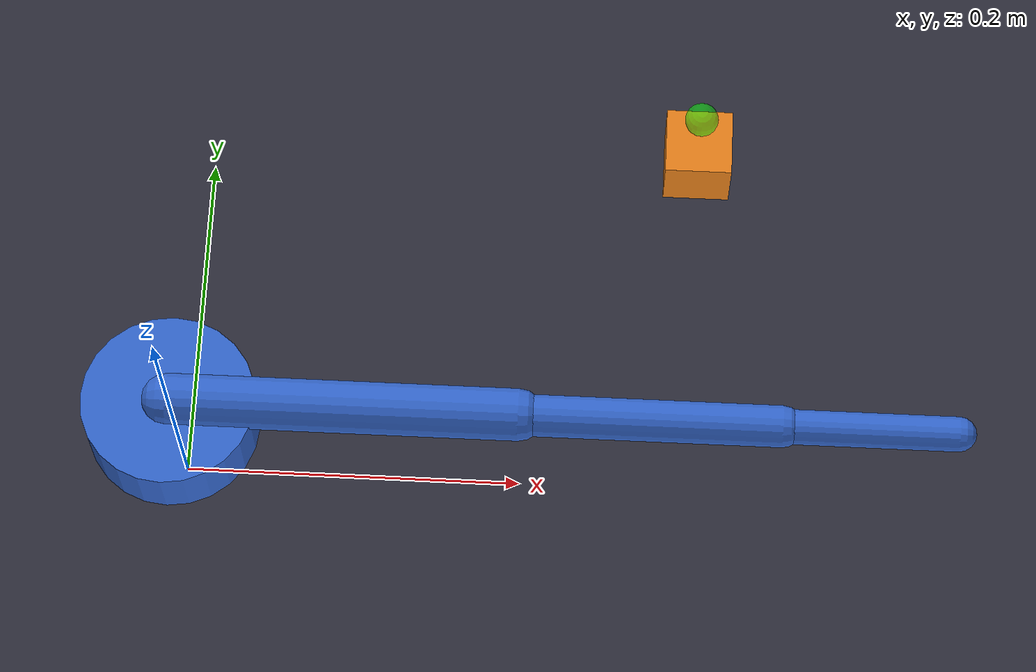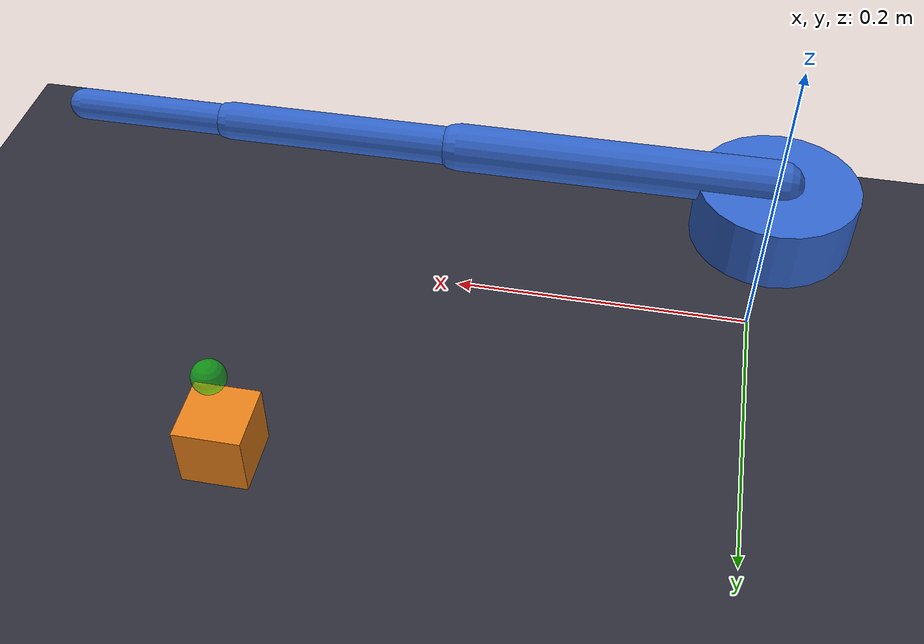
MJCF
<?xml version="1.0" encoding="utf-8"?>
<mujoco model="robot_with_stl_meshes">
  <!--
    Базовый шаблон робота с STL мешами.
    Замените пути к STL файлам на свои.
  -->

  <compiler angle="radian"
            autolimits="true"
            meshdir="../stl_models/"
            texturedir="../textures/"/>

  <option gravity="0 0 -9.81"
          timestep="0.002"
          integrator="implicitfast">
    <flag contact="enable"/>
  </option>

  <default>
    <joint damping="0.5" armature="0.01"/>
    <geom condim="3" friction="0.8 0.3 0.01"/>
    <motor ctrlrange="-3.14159 3.14159" ctrllimited="true"/>

    <!-- Материал по умолчанию для STL мешей -->
    <geom type="mesh" material="default_material"/>
  </default>

  <asset>
    <!-- Текстуры -->
    <texture name="grid" type="2d" builtin="checker"
             rgb1="0.15 0.15 0.2" rgb2="0.2 0.2 0.25"
             width="256" height="256"/>
    <texture name="wood" type="2d" file="wood.png"/>

    <!-- Материалы -->
    <material name="grid_mat" texture="grid" texrepeat="8 8"/>
    <material name="default_material" rgba="0.7 0.7 0.7 1"/>
    <material name="robot_material" rgba="0.2 0.4 0.8 1"/>
    <material name="object_material" rgba="0.9 0.5 0.1 1"/>

    <!-- STL МЕШИ РОБОТА -->
    <!-- РАСКОММЕНТИРУЙТЕ и замените имена файлов -->

    <!-- STL МЕШИ ОБЪЕКТОВ -->

  </asset>

  <worldbody>
    <!-- Пол -->
    <geom name="floor" type="plane" size="2 2 0.01" material="grid_mat"
          pos="0 0 0" conaffinity="1" condim="3"/>

    <!-- Освещение -->
    <light name="main_light" pos="0 0 3" dir="0 0 -1" diffuse="0.8 0.8 0.8"/>
    <light name="fill_light" pos="2 2 2" dir="-0.5 -0.5 -0.5" diffuse="0.3 0.3 0.3"/>

    <!-- Камеры -->
    <camera name="top_down" pos="0 0 2" quat="1 0 0 0"
            fovy="60" mode="fixed"/>
    <camera name="front" pos="1 0 0.5" xyaxes="0 1 0 0 0 1"
            fovy="60" mode="fixed"/>
    <camera name="side" pos="0 1 0.5" xyaxes="-1 0 0 0 0 1"
            fovy="60" mode="fixed"/>

    <!-- РОБОТ С ПРИМИТИВАМИ -->
    <!-- Замените на STL меши когда будут готовы -->

    <body name="base" pos="0 0 0.1">
      <!-- Base geometry (замените на STL меш) -->
      <geom name="base_geom" type="cylinder" size="0.05 0.02"
            material="robot_material" mass="0.5"/>

      <!-- J1: База -->
      <body name="link1" pos="0 0 0.02">
        <joint name="joint_1" type="hinge" axis="0 0 1"
               range="-2.09 2.09" damping="1.0"/>
        <geom name="link1_geom" type="capsule" size="0.015"
              fromto="0 0 0 0.2 0 0" material="robot_material" mass="0.3"/>

        <!-- J2: Плечо -->
        <body name="link2" pos="0.2 0 0">
          <joint name="joint_2" type="hinge" axis="0 1 0"
                 range="-1.57 1.57" damping="0.8"/>
          <geom name="link2_geom" type="capsule" size="0.012"
                fromto="0 0 0 0.15 0 0" material="robot_material" mass="0.25"/>

          <!-- J3: Локоть -->
          <body name="link3" pos="0.15 0 0">
            <joint name="joint_3" type="hinge" axis="0 1 0"
                   range="-2.09 0" damping="0.6"/>
            <geom name="link3_geom" type="capsule" size="0.01"
                  fromto="0 0 0 0.1 0 0" material="robot_material" mass="0.2"/>

            <!-- End-effector -->
            <body name="end_effector" pos="0.1 0 0">
              <site name="ee_site" pos="0 0 0" size="0.005"
                    rgba="1 0 0 1"/>
              <camera name="eye_in_hand" pos="0.02 0 0.02"
                      xyaxes="0 -1 0 0 0 1" fovy="60"/>
            </body>
          </body>
        </body>
      </body>
    </body>

    <!-- ОБЪЕКТЫ ДЛЯ ЗАХВАТА -->
    <!-- Замените на STL меши -->

    <body name="target_object" pos="0.3 0.2 0.05">
      <freejoint name="target_joint"/>
      <geom name="target_geom" type="box" size="0.02 0.02 0.02"
            material="object_material" mass="0.05"
            friction="1 0.5 0.01"/>
    </body>

    <!-- Маркер цели (для IK) -->
    <body name="target_marker" pos="0.3 0.2 0.1" mocap="true">
      <geom name="target_marker_geom" type="sphere" size="0.01"
            rgba="0 1 0 0.5" contype="0" conaffinity="0"/>
    </body>
  </worldbody>

  <actuator>
    <position name="act_joint_1" joint="joint_1" kp="100" kv="10"/>
    <position name="act_joint_2" joint="joint_2" kp="80" kv="8"/>
    <position name="act_joint_3" joint="joint_3" kp="60" kv="6"/>
  </actuator>

  <sensor>
    <jointpos name="sens_joint_1" joint="joint_1"/>
    <jointpos name="sens_joint_2" joint="joint_2"/>
    <jointpos name="sens_joint_3" joint="joint_3"/>
    <framepos name="sens_ee_pos" objtype="site" objname="ee_site"/>
  </sensor>
</mujoco>
